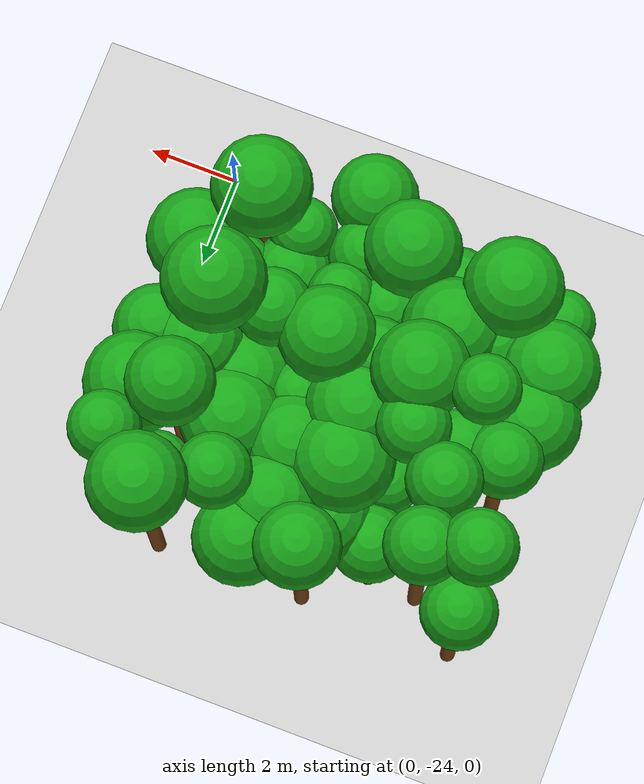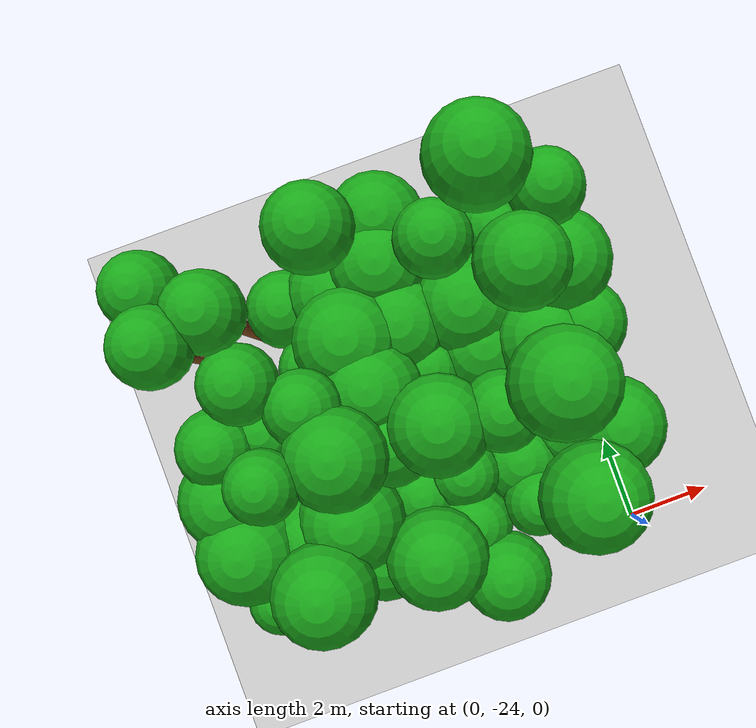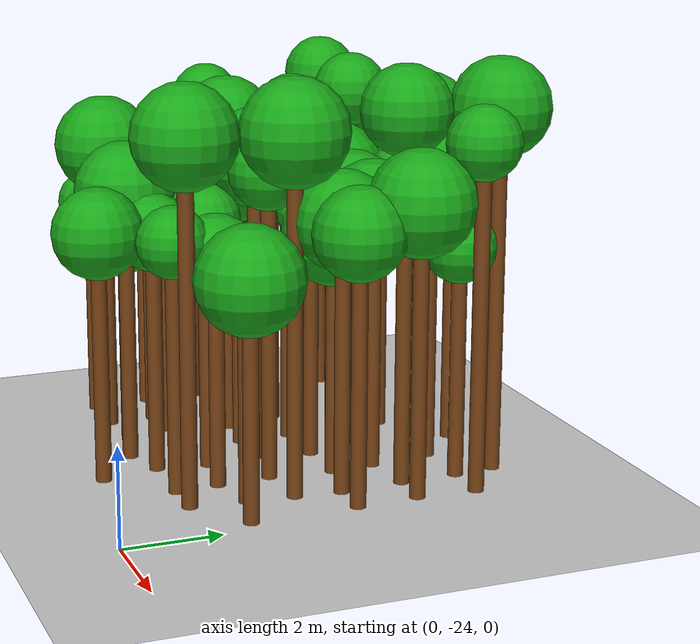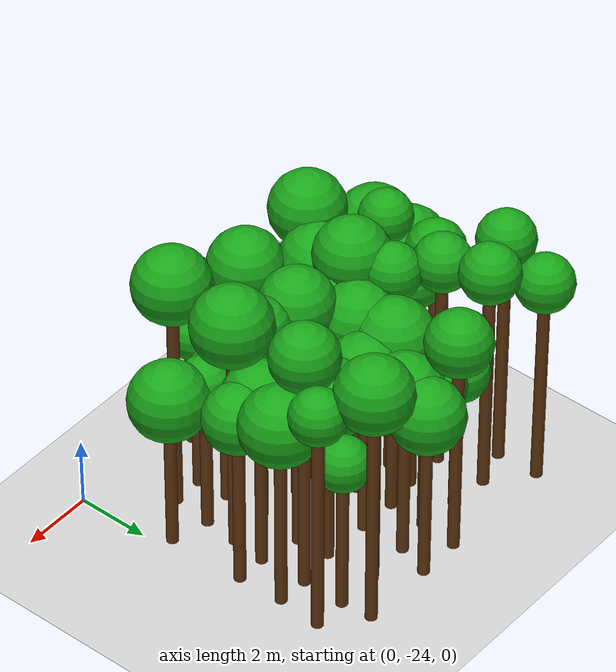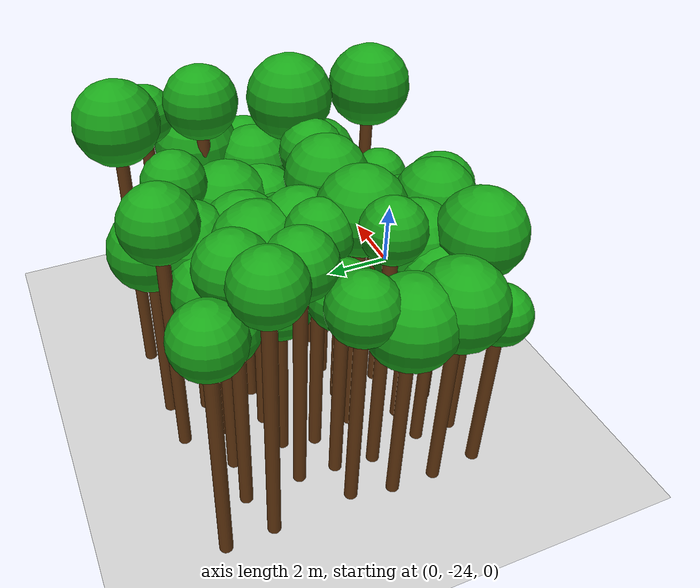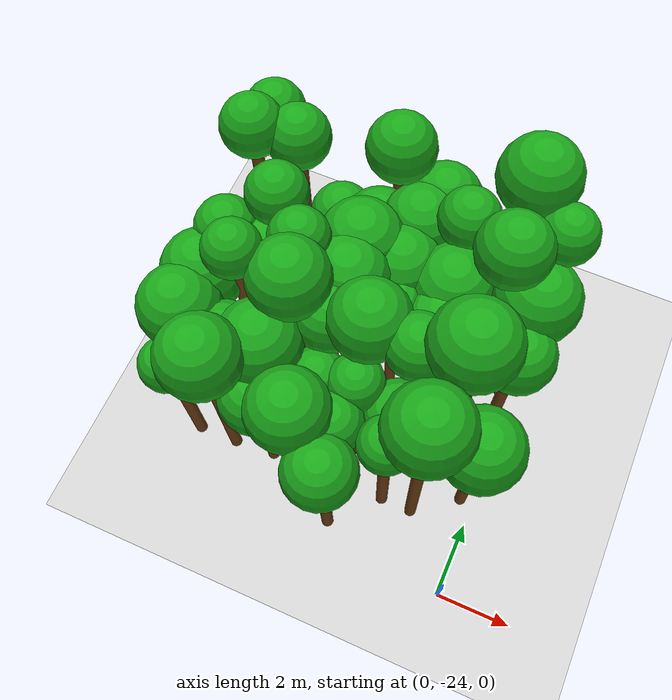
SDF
<sdf version="1.6">
 <world name="forest_world">
  <include><uri>model://sun</uri></include>
  <include><uri>model://ground_plane</uri></include>
  <model name="tree_1107_trunk">
   <static>true</static>
   <pose>-7.95 -22.31 2.15 0 0 0</pose>
   <link name="link">
    <collision name="collision">
     <geometry><cylinder><radius>0.16</radius><length>4.30</length></cylinder></geometry>
    </collision>
    <visual name="visual">
     <geometry><cylinder><radius>0.16</radius><length>4.30</length></cylinder></geometry>
     <material><ambient>0.35 0.20 0.05 1</ambient><diffuse>0.45 0.25 0.08 1</diffuse></material>
    </visual>
   </link>
  </model>
  <model name="tree_1107_leaf">
   <static>true</static>
   <pose>-7.95 -22.31 4.72 0 0 0</pose>
   <link name="link">
    <collision name="collision"><geometry><sphere><radius>0.71</radius></sphere></geometry></collision>
    <visual name="visual">
     <geometry><sphere><radius>0.71</radius></sphere></geometry>
     <material><ambient>0.05 0.45 0.05 1</ambient><diffuse>0.10 0.65 0.10 1</diffuse></material>
    </visual>
   </link>
  </model>
  <model name="tree_1108_trunk">
   <static>true</static>
   <pose>-8.07 -21.11 2.44 0 0 0</pose>
   <link name="link">
    <collision name="collision">
     <geometry><cylinder><radius>0.16</radius><length>4.88</length></cylinder></geometry>
    </collision>
    <visual name="visual">
     <geometry><cylinder><radius>0.16</radius><length>4.88</length></cylinder></geometry>
     <material><ambient>0.35 0.20 0.05 1</ambient><diffuse>0.45 0.25 0.08 1</diffuse></material>
    </visual>
   </link>
  </model>
  <model name="tree_1108_leaf">
   <static>true</static>
   <pose>-8.07 -21.11 5.51 0 0 0</pose>
   <link name="link">
    <collision name="collision"><geometry><sphere><radius>1.04</radius></sphere></geometry></collision>
    <visual name="visual">
     <geometry><sphere><radius>1.04</radius></sphere></geometry>
     <material><ambient>0.05 0.45 0.05 1</ambient><diffuse>0.10 0.65 0.10 1</diffuse></material>
    </visual>
   </link>
  </model>
  <model name="tree_1109_trunk">
   <static>true</static>
   <pose>-8.06 -20.00 2.39 0 0 0</pose>
   <link name="link">
    <collision name="collision">
     <geometry><cylinder><radius>0.16</radius><length>4.77</length></cylinder></geometry>
    </collision>
    <visual name="visual">
     <geometry><cylinder><radius>0.16</radius><length>4.77</length></cylinder></geometry>
     <material><ambient>0.35 0.20 0.05 1</ambient><diffuse>0.45 0.25 0.08 1</diffuse></material>
    </visual>
   </link>
  </model>
  <model name="tree_1109_leaf">
   <static>true</static>
   <pose>-8.06 -20.00 5.40 0 0 0</pose>
   <link name="link">
    <collision name="collision"><geometry><sphere><radius>1.05</radius></sphere></geometry></collision>
    <visual name="visual">
     <geometry><sphere><radius>1.05</radius></sphere></geometry>
     <material><ambient>0.05 0.45 0.05 1</ambient><diffuse>0.10 0.65 0.10 1</diffuse></material>
    </visual>
   </link>
  </model>
  <model name="tree_1110_trunk">
   <static>true</static>
   <pose>-7.86 -18.98 2.73 0 0 0</pose>
   <link name="link">
    <collision name="collision">
     <geometry><cylinder><radius>0.16</radius><length>5.46</length></cylinder></geometry>
    </collision>
    <visual name="visual">
     <geometry><cylinder><radius>0.16</radius><length>5.46</length></cylinder></geometry>
     <material><ambient>0.35 0.20 0.05 1</ambient><diffuse>0.45 0.25 0.08 1</diffuse></material>
    </visual>
   </link>
  </model>
  <model name="tree_1110_leaf">
   <static>true</static>
   <pose>-7.86 -18.98 5.94 0 0 0</pose>
   <link name="link">
    <collision name="collision"><geometry><sphere><radius>0.80</radius></sphere></geometry></collision>
    <visual name="visual">
     <geometry><sphere><radius>0.80</radius></sphere></geometry>
     <material><ambient>0.05 0.45 0.05 1</ambient><diffuse>0.10 0.65 0.10 1</diffuse></material>
    </visual>
   </link>
  </model>
  <model name="tree_1112_trunk">
   <static>true</static>
   <pose>-8.03 -16.94 3.40 0 0 0</pose>
   <link name="link">
    <collision name="collision">
     <geometry><cylinder><radius>0.16</radius><length>6.80</length></cylinder></geometry>
    </collision>
    <visual name="visual">
     <geometry><cylinder><radius>0.16</radius><length>6.80</length></cylinder></geometry>
     <material><ambient>0.35 0.20 0.05 1</ambient><diffuse>0.45 0.25 0.08 1</diffuse></material>
    </visual>
   </link>
  </model>
  <model name="tree_1112_leaf">
   <static>true</static>
   <pose>-8.03 -16.94 7.27 0 0 0</pose>
   <link name="link">
    <collision name="collision"><geometry><sphere><radius>0.78</radius></sphere></geometry></collision>
    <visual name="visual">
     <geometry><sphere><radius>0.78</radius></sphere></geometry>
     <material><ambient>0.05 0.45 0.05 1</ambient><diffuse>0.10 0.65 0.10 1</diffuse></material>
    </visual>
   </link>
  </model>
  <model name="tree_1113_trunk">
   <static>true</static>
   <pose>-8.08 -15.75 3.00 0 0 0</pose>
   <link name="link">
    <collision name="collision">
     <geometry><cylinder><radius>0.16</radius><length>5.99</length></cylinder></geometry>
    </collision>
    <visual name="visual">
     <geometry><cylinder><radius>0.16</radius><length>5.99</length></cylinder></geometry>
     <material><ambient>0.35 0.20 0.05 1</ambient><diffuse>0.45 0.25 0.08 1</diffuse></material>
    </visual>
   </link>
  </model>
  <model name="tree_1113_leaf">
   <static>true</static>
   <pose>-8.08 -15.75 6.46 0 0 0</pose>
   <link name="link">
    <collision name="collision"><geometry><sphere><radius>0.78</radius></sphere></geometry></collision>
    <visual name="visual">
     <geometry><sphere><radius>0.78</radius></sphere></geometry>
     <material><ambient>0.05 0.45 0.05 1</ambient><diffuse>0.10 0.65 0.10 1</diffuse></material>
    </visual>
   </link>
  </model>
  <model name="tree_1162_trunk">
   <static>true</static>
   <pose>-6.84 -22.29 2.78 0 0 0</pose>
   <link name="link">
    <collision name="collision">
     <geometry><cylinder><radius>0.16</radius><length>5.56</length></cylinder></geometry>
    </collision>
    <visual name="visual">
     <geometry><cylinder><radius>0.16</radius><length>5.56</length></cylinder></geometry>
     <material><ambient>0.35 0.20 0.05 1</ambient><diffuse>0.45 0.25 0.08 1</diffuse></material>
    </visual>
   </link>
  </model>
  <model name="tree_1162_leaf">
   <static>true</static>
   <pose>-6.84 -22.29 6.17 0 0 0</pose>
   <link name="link">
    <collision name="collision"><geometry><sphere><radius>1.03</radius></sphere></geometry></collision>
    <visual name="visual">
     <geometry><sphere><radius>1.03</radius></sphere></geometry>
     <material><ambient>0.05 0.45 0.05 1</ambient><diffuse>0.10 0.65 0.10 1</diffuse></material>
    </visual>
   </link>
  </model>
  <model name="tree_1163_trunk">
   <static>true</static>
   <pose>-6.84 -21.33 2.31 0 0 0</pose>
   <link name="link">
    <collision name="collision">
     <geometry><cylinder><radius>0.16</radius><length>4.62</length></cylinder></geometry>
    </collision>
    <visual name="visual">
     <geometry><cylinder><radius>0.16</radius><length>4.62</length></cylinder></geometry>
     <material><ambient>0.35 0.20 0.05 1</ambient><diffuse>0.45 0.25 0.08 1</diffuse></material>
    </visual>
   </link>
  </model>
  <model name="tree_1163_leaf">
   <static>true</static>
   <pose>-6.84 -21.33 5.18 0 0 0</pose>
   <link name="link">
    <collision name="collision"><geometry><sphere><radius>0.94</radius></sphere></geometry></collision>
    <visual name="visual">
     <geometry><sphere><radius>0.94</radius></sphere></geometry>
     <material><ambient>0.05 0.45 0.05 1</ambient><diffuse>0.10 0.65 0.10 1</diffuse></material>
    </visual>
   </link>
  </model>
  <model name="tree_1164_trunk">
   <static>true</static>
   <pose>-7.07 -19.96 3.30 0 0 0</pose>
   <link name="link">
    <collision name="collision">
     <geometry><cylinder><radius>0.16</radius><length>6.59</length></cylinder></geometry>
    </collision>
    <visual name="visual">
     <geometry><cylinder><radius>0.16</radius><length>6.59</length></cylinder></geometry>
     <material><ambient>0.35 0.20 0.05 1</ambient><diffuse>0.45 0.25 0.08 1</diffuse></material>
    </visual>
   </link>
  </model>
  <model name="tree_1164_leaf">
   <static>true</static>
   <pose>-7.07 -19.96 7.02 0 0 0</pose>
   <link name="link">
    <collision name="collision"><geometry><sphere><radius>0.71</radius></sphere></geometry></collision>
    <visual name="visual">
     <geometry><sphere><radius>0.71</radius></sphere></geometry>
     <material><ambient>0.05 0.45 0.05 1</ambient><diffuse>0.10 0.65 0.10 1</diffuse></material>
    </visual>
   </link>
  </model>
  <model name="tree_1165_trunk">
   <static>true</static>
   <pose>-6.96 -18.98 2.55 0 0 0</pose>
   <link name="link">
    <collision name="collision">
     <geometry><cylinder><radius>0.16</radius><length>5.10</length></cylinder></geometry>
    </collision>
    <visual name="visual">
     <geometry><cylinder><radius>0.16</radius><length>5.10</length></cylinder></geometry>
     <material><ambient>0.35 0.20 0.05 1</ambient><diffuse>0.45 0.25 0.08 1</diffuse></material>
    </visual>
   </link>
  </model>
  <model name="tree_1165_leaf">
   <static>true</static>
   <pose>-6.96 -18.98 5.58 0 0 0</pose>
   <link name="link">
    <collision name="collision"><geometry><sphere><radius>0.80</radius></sphere></geometry></collision>
    <visual name="visual">
     <geometry><sphere><radius>0.80</radius></sphere></geometry>
     <material><ambient>0.05 0.45 0.05 1</ambient><diffuse>0.10 0.65 0.10 1</diffuse></material>
    </visual>
   </link>
  </model>
  <model name="tree_1166_trunk">
   <static>true</static>
   <pose>-6.92 -18.04 3.09 0 0 0</pose>
   <link name="link">
    <collision name="collision">
     <geometry><cylinder><radius>0.16</radius><length>6.18</length></cylinder></geometry>
    </collision>
    <visual name="visual">
     <geometry><cylinder><radius>0.16</radius><length>6.18</length></cylinder></geometry>
     <material><ambient>0.35 0.20 0.05 1</ambient><diffuse>0.45 0.25 0.08 1</diffuse></material>
    </visual>
   </link>
  </model>
  <model name="tree_1166_leaf">
   <static>true</static>
   <pose>-6.92 -18.04 6.65 0 0 0</pose>
   <link name="link">
    <collision name="collision"><geometry><sphere><radius>0.78</radius></sphere></geometry></collision>
    <visual name="visual">
     <geometry><sphere><radius>0.78</radius></sphere></geometry>
     <material><ambient>0.05 0.45 0.05 1</ambient><diffuse>0.10 0.65 0.10 1</diffuse></material>
    </visual>
   </link>
  </model>
  <model name="tree_1167_trunk">
   <static>true</static>
   <pose>-7.00 -16.63 3.26 0 0 0</pose>
   <link name="link">
    <collision name="collision">
     <geometry><cylinder><radius>0.16</radius><length>6.53</length></cylinder></geometry>
    </collision>
    <visual name="visual">
     <geometry><cylinder><radius>0.16</radius><length>6.53</length></cylinder></geometry>
     <material><ambient>0.35 0.20 0.05 1</ambient><diffuse>0.45 0.25 0.08 1</diffuse></material>
    </visual>
   </link>
  </model>
  <model name="tree_1167_leaf">
   <static>true</static>
   <pose>-7.00 -16.63 7.01 0 0 0</pose>
   <link name="link">
    <collision name="collision"><geometry><sphere><radius>0.80</radius></sphere></geometry></collision>
    <visual name="visual">
     <geometry><sphere><radius>0.80</radius></sphere></geometry>
     <material><ambient>0.05 0.45 0.05 1</ambient><diffuse>0.10 0.65 0.10 1</diffuse></material>
    </visual>
   </link>
  </model>
  <model name="tree_1217_trunk">
   <static>true</static>
   <pose>-5.69 -22.20 2.02 0 0 0</pose>
   <link name="link">
    <collision name="collision">
     <geometry><cylinder><radius>0.16</radius><length>4.05</length></cylinder></geometry>
    </collision>
    <visual name="visual">
     <geometry><cylinder><radius>0.16</radius><length>4.05</length></cylinder></geometry>
     <material><ambient>0.35 0.20 0.05 1</ambient><diffuse>0.45 0.25 0.08 1</diffuse></material>
    </visual>
   </link>
  </model>
  <model name="tree_1217_leaf">
   <static>true</static>
   <pose>-5.69 -22.20 4.61 0 0 0</pose>
   <link name="link">
    <collision name="collision"><geometry><sphere><radius>0.93</radius></sphere></geometry></collision>
    <visual name="visual">
     <geometry><sphere><radius>0.93</radius></sphere></geometry>
     <material><ambient>0.05 0.45 0.05 1</ambient><diffuse>0.10 0.65 0.10 1</diffuse></material>
    </visual>
   </link>
  </model>
  <model name="tree_1218_trunk">
   <static>true</static>
   <pose>-5.97 -21.21 2.46 0 0 0</pose>
   <link name="link">
    <collision name="collision">
     <geometry><cylinder><radius>0.16</radius><length>4.91</length></cylinder></geometry>
    </collision>
    <visual name="visual">
     <geometry><cylinder><radius>0.16</radius><length>4.91</length></cylinder></geometry>
     <material><ambient>0.35 0.20 0.05 1</ambient><diffuse>0.45 0.25 0.08 1</diffuse></material>
    </visual>
   </link>
  </model>
  <model name="tree_1218_leaf">
   <static>true</static>
   <pose>-5.97 -21.21 5.55 0 0 0</pose>
   <link name="link">
    <collision name="collision"><geometry><sphere><radius>1.06</radius></sphere></geometry></collision>
    <visual name="visual">
     <geometry><sphere><radius>1.06</radius></sphere></geometry>
     <material><ambient>0.05 0.45 0.05 1</ambient><diffuse>0.10 0.65 0.10 1</diffuse></material>
    </visual>
   </link>
  </model>
  <model name="tree_1219_trunk">
   <static>true</static>
   <pose>-5.72 -19.95 3.02 0 0 0</pose>
   <link name="link">
    <collision name="collision">
     <geometry><cylinder><radius>0.16</radius><length>6.05</length></cylinder></geometry>
    </collision>
    <visual name="visual">
     <geometry><cylinder><radius>0.16</radius><length>6.05</length></cylinder></geometry>
     <material><ambient>0.35 0.20 0.05 1</ambient><diffuse>0.45 0.25 0.08 1</diffuse></material>
    </visual>
   </link>
  </model>
  <model name="tree_1219_leaf">
   <static>true</static>
   <pose>-5.72 -19.95 6.65 0 0 0</pose>
   <link name="link">
    <collision name="collision"><geometry><sphere><radius>1.01</radius></sphere></geometry></collision>
    <visual name="visual">
     <geometry><sphere><radius>1.01</radius></sphere></geometry>
     <material><ambient>0.05 0.45 0.05 1</ambient><diffuse>0.10 0.65 0.10 1</diffuse></material>
    </visual>
   </link>
  </model>
  <model name="tree_1220_trunk">
   <static>true</static>
   <pose>-5.98 -18.86 3.04 0 0 0</pose>
   <link name="link">
    <collision name="collision">
     <geometry><cylinder><radius>0.16</radius><length>6.08</length></cylinder></geometry>
    </collision>
    <visual name="visual">
     <geometry><cylinder><radius>0.16</radius><length>6.08</length></cylinder></geometry>
     <material><ambient>0.35 0.20 0.05 1</ambient><diffuse>0.45 0.25 0.08 1</diffuse></material>
    </visual>
   </link>
  </model>
  <model name="tree_1220_leaf">
   <static>true</static>
   <pose>-5.98 -18.86 6.53 0 0 0</pose>
   <link name="link">
    <collision name="collision"><geometry><sphere><radius>0.76</radius></sphere></geometry></collision>
    <visual name="visual">
     <geometry><sphere><radius>0.76</radius></sphere></geometry>
     <material><ambient>0.05 0.45 0.05 1</ambient><diffuse>0.10 0.65 0.10 1</diffuse></material>
    </visual>
   </link>
  </model>
  <model name="tree_1221_trunk">
   <static>true</static>
   <pose>-5.79 -18.04 2.06 0 0 0</pose>
   <link name="link">
    <collision name="collision">
     <geometry><cylinder><radius>0.16</radius><length>4.12</length></cylinder></geometry>
    </collision>
    <visual name="visual">
     <geometry><cylinder><radius>0.16</radius><length>4.12</length></cylinder></geometry>
     <material><ambient>0.35 0.20 0.05 1</ambient><diffuse>0.45 0.25 0.08 1</diffuse></material>
    </visual>
   </link>
  </model>
  <model name="tree_1221_leaf">
   <static>true</static>
   <pose>-5.79 -18.04 4.55 0 0 0</pose>
   <link name="link">
    <collision name="collision"><geometry><sphere><radius>0.71</radius></sphere></geometry></collision>
    <visual name="visual">
     <geometry><sphere><radius>0.71</radius></sphere></geometry>
     <material><ambient>0.05 0.45 0.05 1</ambient><diffuse>0.10 0.65 0.10 1</diffuse></material>
    </visual>
   </link>
  </model>
  <model name="tree_1222_trunk">
   <static>true</static>
   <pose>-5.90 -16.70 2.01 0 0 0</pose>
   <link name="link">
    <collision name="collision">
     <geometry><cylinder><radius>0.16</radius><length>4.02</length></cylinder></geometry>
    </collision>
    <visual name="visual">
     <geometry><cylinder><radius>0.16</radius><length>4.02</length></cylinder></geometry>
     <material><ambient>0.35 0.20 0.05 1</ambient><diffuse>0.45 0.25 0.08 1</diffuse></material>
    </visual>
   </link>
  </model>
  <model name="tree_1222_leaf">
   <static>true</static>
   <pose>-5.90 -16.70 4.52 0 0 0</pose>
   <link name="link">
    <collision name="collision"><geometry><sphere><radius>0.83</radius></sphere></geometry></collision>
    <visual name="visual">
     <geometry><sphere><radius>0.83</radius></sphere></geometry>
     <material><ambient>0.05 0.45 0.05 1</ambient><diffuse>0.10 0.65 0.10 1</diffuse></material>
    </visual>
   </link>
  </model>
  <model name="tree_1272_trunk">
   <static>true</static>
   <pose>-4.64 -22.47 2.51 0 0 0</pose>
   <link name="link">
    <collision name="collision">
     <geometry><cylinder><radius>0.16</radius><length>5.01</length></cylinder></geometry>
    </collision>
    <visual name="visual">
     <geometry><cylinder><radius>0.16</radius><length>5.01</length></cylinder></geometry>
     <material><ambient>0.35 0.20 0.05 1</ambient><diffuse>0.45 0.25 0.08 1</diffuse></material>
    </visual>
   </link>
  </model>
  <model name="tree_1272_leaf">
   <static>true</static>
   <pose>-4.64 -22.47 5.62 0 0 0</pose>
   <link name="link">
    <collision name="collision"><geometry><sphere><radius>1.02</radius></sphere></geometry></collision>
    <visual name="visual">
     <geometry><sphere><radius>1.02</radius></sphere></geometry>
     <material><ambient>0.05 0.45 0.05 1</ambient><diffuse>0.10 0.65 0.10 1</diffuse></material>
    </visual>
   </link>
  </model>
  <model name="tree_1273_trunk">
   <static>true</static>
   <pose>-4.53 -21.27 2.22 0 0 0</pose>
   <link name="link">
    <collision name="collision">
     <geometry><cylinder><radius>0.16</radius><length>4.45</length></cylinder></geometry>
    </collision>
    <visual name="visual">
     <geometry><cylinder><radius>0.16</radius><length>4.45</length></cylinder></geometry>
     <material><ambient>0.35 0.20 0.05 1</ambient><diffuse>0.45 0.25 0.08 1</diffuse></material>
    </visual>
   </link>
  </model>
  <model name="tree_1273_leaf">
   <static>true</static>
   <pose>-4.53 -21.27 4.90 0 0 0</pose>
   <link name="link">
    <collision name="collision"><geometry><sphere><radius>0.75</radius></sphere></geometry></collision>
    <visual name="visual">
     <geometry><sphere><radius>0.75</radius></sphere></geometry>
     <material><ambient>0.05 0.45 0.05 1</ambient><diffuse>0.10 0.65 0.10 1</diffuse></material>
    </visual>
   </link>
  </model>
  <model name="tree_1274_trunk">
   <static>true</static>
   <pose>-4.73 -20.03 2.57 0 0 0</pose>
   <link name="link">
    <collision name="collision">
     <geometry><cylinder><radius>0.16</radius><length>5.15</length></cylinder></geometry>
    </collision>
    <visual name="visual">
     <geometry><cylinder><radius>0.16</radius><length>5.15</length></cylinder></geometry>
     <material><ambient>0.35 0.20 0.05 1</ambient><diffuse>0.45 0.25 0.08 1</diffuse></material>
    </visual>
   </link>
  </model>
  <model name="tree_1274_leaf">
   <static>true</static>
   <pose>-4.73 -20.03 5.69 0 0 0</pose>
   <link name="link">
    <collision name="collision"><geometry><sphere><radius>0.89</radius></sphere></geometry></collision>
    <visual name="visual">
     <geometry><sphere><radius>0.89</radius></sphere></geometry>
     <material><ambient>0.05 0.45 0.05 1</ambient><diffuse>0.10 0.65 0.10 1</diffuse></material>
    </visual>
   </link>
  </model>
  <model name="tree_1275_trunk">
   <static>true</static>
   <pose>-4.74 -18.95 2.54 0 0 0</pose>
   <link name="link">
    <collision name="collision">
     <geometry><cylinder><radius>0.16</radius><length>5.08</length></cylinder></geometry>
    </collision>
    <visual name="visual">
     <geometry><cylinder><radius>0.16</radius><length>5.08</length></cylinder></geometry>
     <material><ambient>0.35 0.20 0.05 1</ambient><diffuse>0.45 0.25 0.08 1</diffuse></material>
    </visual>
   </link>
  </model>
  <model name="tree_1275_leaf">
   <static>true</static>
   <pose>-4.74 -18.95 5.72 0 0 0</pose>
   <link name="link">
    <collision name="collision"><geometry><sphere><radius>1.05</radius></sphere></geometry></collision>
    <visual name="visual">
     <geometry><sphere><radius>1.05</radius></sphere></geometry>
     <material><ambient>0.05 0.45 0.05 1</ambient><diffuse>0.10 0.65 0.10 1</diffuse></material>
    </visual>
   </link>
  </model>
  <model name="tree_1276_trunk">
   <static>true</static>
   <pose>-4.84 -17.89 2.50 0 0 0</pose>
   <link name="link">
    <collision name="collision">
     <geometry><cylinder><radius>0.16</radius><length>4.99</length></cylinder></geometry>
    </collision>
    <visual name="visual">
     <geometry><cylinder><radius>0.16</radius><length>4.99</length></cylinder></geometry>
     <material><ambient>0.35 0.20 0.05 1</ambient><diffuse>0.45 0.25 0.08 1</diffuse></material>
    </visual>
   </link>
  </model>
  <model name="tree_1276_leaf">
   <static>true</static>
   <pose>-4.84 -17.89 5.64 0 0 0</pose>
   <link name="link">
    <collision name="collision"><geometry><sphere><radius>1.09</radius></sphere></geometry></collision>
    <visual name="visual">
     <geometry><sphere><radius>1.09</radius></sphere></geometry>
     <material><ambient>0.05 0.45 0.05 1</ambient><diffuse>0.10 0.65 0.10 1</diffuse></material>
    </visual>
   </link>
  </model>
  <model name="tree_1277_trunk">
   <static>true</static>
   <pose>-4.80 -16.83 2.07 0 0 0</pose>
   <link name="link">
    <collision name="collision">
     <geometry><cylinder><radius>0.16</radius><length>4.15</length></cylinder></geometry>
    </collision>
    <visual name="visual">
     <geometry><cylinder><radius>0.16</radius><length>4.15</length></cylinder></geometry>
     <material><ambient>0.35 0.20 0.05 1</ambient><diffuse>0.45 0.25 0.08 1</diffuse></material>
    </visual>
   </link>
  </model>
  <model name="tree_1277_leaf">
   <static>true</static>
   <pose>-4.80 -16.83 4.76 0 0 0</pose>
   <link name="link">
    <collision name="collision"><geometry><sphere><radius>1.03</radius></sphere></geometry></collision>
    <visual name="visual">
     <geometry><sphere><radius>1.03</radius></sphere></geometry>
     <material><ambient>0.05 0.45 0.05 1</ambient><diffuse>0.10 0.65 0.10 1</diffuse></material>
    </visual>
   </link>
  </model>
  <model name="tree_1278_trunk">
   <static>true</static>
   <pose>-4.71 -15.79 3.12 0 0 0</pose>
   <link name="link">
    <collision name="collision">
     <geometry><cylinder><radius>0.16</radius><length>6.25</length></cylinder></geometry>
    </collision>
    <visual name="visual">
     <geometry><cylinder><radius>0.16</radius><length>6.25</length></cylinder></geometry>
     <material><ambient>0.35 0.20 0.05 1</ambient><diffuse>0.45 0.25 0.08 1</diffuse></material>
    </visual>
   </link>
  </model>
  <model name="tree_1278_leaf">
   <static>true</static>
   <pose>-4.71 -15.79 6.78 0 0 0</pose>
   <link name="link">
    <collision name="collision"><geometry><sphere><radius>0.88</radius></sphere></geometry></collision>
    <visual name="visual">
     <geometry><sphere><radius>0.88</radius></sphere></geometry>
     <material><ambient>0.05 0.45 0.05 1</ambient><diffuse>0.10 0.65 0.10 1</diffuse></material>
    </visual>
   </link>
  </model>
  <model name="tree_1326_trunk">
   <static>true</static>
   <pose>-3.50 -23.35 2.27 0 0 0</pose>
   <link name="link">
    <collision name="collision">
     <geometry><cylinder><radius>0.16</radius><length>4.53</length></cylinder></geometry>
    </collision>
    <visual name="visual">
     <geometry><cylinder><radius>0.16</radius><length>4.53</length></cylinder></geometry>
     <material><ambient>0.35 0.20 0.05 1</ambient><diffuse>0.45 0.25 0.08 1</diffuse></material>
    </visual>
   </link>
  </model>
  <model name="tree_1326_leaf">
   <static>true</static>
   <pose>-3.50 -23.35 5.08 0 0 0</pose>
   <link name="link">
    <collision name="collision"><geometry><sphere><radius>0.91</radius></sphere></geometry></collision>
    <visual name="visual">
     <geometry><sphere><radius>0.91</radius></sphere></geometry>
     <material><ambient>0.05 0.45 0.05 1</ambient><diffuse>0.10 0.65 0.10 1</diffuse></material>
    </visual>
   </link>
  </model>
  <model name="tree_1327_trunk">
   <static>true</static>
   <pose>-3.74 -22.17 2.25 0 0 0</pose>
   <link name="link">
    <collision name="collision">
     <geometry><cylinder><radius>0.16</radius><length>4.49</length></cylinder></geometry>
    </collision>
    <visual name="visual">
     <geometry><cylinder><radius>0.16</radius><length>4.49</length></cylinder></geometry>
     <material><ambient>0.35 0.20 0.05 1</ambient><diffuse>0.45 0.25 0.08 1</diffuse></material>
    </visual>
   </link>
  </model>
  <model name="tree_1327_leaf">
   <static>true</static>
   <pose>-3.74 -22.17 4.96 0 0 0</pose>
   <link name="link">
    <collision name="collision"><geometry><sphere><radius>0.78</radius></sphere></geometry></collision>
    <visual name="visual">
     <geometry><sphere><radius>0.78</radius></sphere></geometry>
     <material><ambient>0.05 0.45 0.05 1</ambient><diffuse>0.10 0.65 0.10 1</diffuse></material>
    </visual>
   </link>
  </model>
  <model name="tree_1328_trunk">
   <static>true</static>
   <pose>-3.59 -21.13 2.38 0 0 0</pose>
   <link name="link">
    <collision name="collision">
     <geometry><cylinder><radius>0.16</radius><length>4.75</length></cylinder></geometry>
    </collision>
    <visual name="visual">
     <geometry><cylinder><radius>0.16</radius><length>4.75</length></cylinder></geometry>
     <material><ambient>0.35 0.20 0.05 1</ambient><diffuse>0.45 0.25 0.08 1</diffuse></material>
    </visual>
   </link>
  </model>
  <model name="tree_1328_leaf">
   <static>true</static>
   <pose>-3.59 -21.13 5.18 0 0 0</pose>
   <link name="link">
    <collision name="collision"><geometry><sphere><radius>0.71</radius></sphere></geometry></collision>
    <visual name="visual">
     <geometry><sphere><radius>0.71</radius></sphere></geometry>
     <material><ambient>0.05 0.45 0.05 1</ambient><diffuse>0.10 0.65 0.10 1</diffuse></material>
    </visual>
   </link>
  </model>
  <model name="tree_1329_trunk">
   <static>true</static>
   <pose>-3.71 -20.04 2.86 0 0 0</pose>
   <link name="link">
    <collision name="collision">
     <geometry><cylinder><radius>0.16</radius><length>5.72</length></cylinder></geometry>
    </collision>
    <visual name="visual">
     <geometry><cylinder><radius>0.16</radius><length>5.72</length></cylinder></geometry>
     <material><ambient>0.35 0.20 0.05 1</ambient><diffuse>0.45 0.25 0.08 1</diffuse></material>
    </visual>
   </link>
  </model>
  <model name="tree_1329_leaf">
   <static>true</static>
   <pose>-3.71 -20.04 6.32 0 0 0</pose>
   <link name="link">
    <collision name="collision"><geometry><sphere><radius>1.00</radius></sphere></geometry></collision>
    <visual name="visual">
     <geometry><sphere><radius>1.00</radius></sphere></geometry>
     <material><ambient>0.05 0.45 0.05 1</ambient><diffuse>0.10 0.65 0.10 1</diffuse></material>
    </visual>
   </link>
  </model>
  <model name="tree_1330_trunk">
   <static>true</static>
   <pose>-3.52 -18.91 2.38 0 0 0</pose>
   <link name="link">
    <collision name="collision">
     <geometry><cylinder><radius>0.16</radius><length>4.77</length></cylinder></geometry>
    </collision>
    <visual name="visual">
     <geometry><cylinder><radius>0.16</radius><length>4.77</length></cylinder></geometry>
     <material><ambient>0.35 0.20 0.05 1</ambient><diffuse>0.45 0.25 0.08 1</diffuse></material>
    </visual>
   </link>
  </model>
  <model name="tree_1330_leaf">
   <static>true</static>
   <pose>-3.52 -18.91 5.20 0 0 0</pose>
   <link name="link">
    <collision name="collision"><geometry><sphere><radius>0.71</radius></sphere></geometry></collision>
    <visual name="visual">
     <geometry><sphere><radius>0.71</radius></sphere></geometry>
     <material><ambient>0.05 0.45 0.05 1</ambient><diffuse>0.10 0.65 0.10 1</diffuse></material>
    </visual>
   </link>
  </model>
  <model name="tree_1331_trunk">
   <static>true</static>
   <pose>-3.78 -17.93 2.33 0 0 0</pose>
   <link name="link">
    <collision name="collision">
     <geometry><cylinder><radius>0.16</radius><length>4.66</length></cylinder></geometry>
    </collision>
    <visual name="visual">
     <geometry><cylinder><radius>0.16</radius><length>4.66</length></cylinder></geometry>
     <material><ambient>0.35 0.20 0.05 1</ambient><diffuse>0.45 0.25 0.08 1</diffuse></material>
    </visual>
   </link>
  </model>
  <model name="tree_1331_leaf">
   <static>true</static>
   <pose>-3.78 -17.93 5.28 0 0 0</pose>
   <link name="link">
    <collision name="collision"><geometry><sphere><radius>1.04</radius></sphere></geometry></collision>
    <visual name="visual">
     <geometry><sphere><radius>1.04</radius></sphere></geometry>
     <material><ambient>0.05 0.45 0.05 1</ambient><diffuse>0.10 0.65 0.10 1</diffuse></material>
    </visual>
   </link>
  </model>
  <model name="tree_1332_trunk">
   <static>true</static>
   <pose>-3.77 -16.67 2.37 0 0 0</pose>
   <link name="link">
    <collision name="collision">
     <geometry><cylinder><radius>0.16</radius><length>4.73</length></cylinder></geometry>
    </collision>
    <visual name="visual">
     <geometry><cylinder><radius>0.16</radius><length>4.73</length></cylinder></geometry>
     <material><ambient>0.35 0.20 0.05 1</ambient><diffuse>0.45 0.25 0.08 1</diffuse></material>
    </visual>
   </link>
  </model>
  <model name="tree_1332_leaf">
   <static>true</static>
   <pose>-3.77 -16.67 5.35 0 0 0</pose>
   <link name="link">
    <collision name="collision"><geometry><sphere><radius>1.02</radius></sphere></geometry></collision>
    <visual name="visual">
     <geometry><sphere><radius>1.02</radius></sphere></geometry>
     <material><ambient>0.05 0.45 0.05 1</ambient><diffuse>0.10 0.65 0.10 1</diffuse></material>
    </visual>
   </link>
  </model>
  <model name="tree_1333_trunk">
   <static>true</static>
   <pose>-3.49 -15.77 2.34 0 0 0</pose>
   <link name="link">
    <collision name="collision">
     <geometry><cylinder><radius>0.16</radius><length>4.68</length></cylinder></geometry>
    </collision>
    <visual name="visual">
     <geometry><cylinder><radius>0.16</radius><length>4.68</length></cylinder></geometry>
     <material><ambient>0.35 0.20 0.05 1</ambient><diffuse>0.45 0.25 0.08 1</diffuse></material>
    </visual>
   </link>
  </model>
  <model name="tree_1333_leaf">
   <static>true</static>
   <pose>-3.49 -15.77 5.27 0 0 0</pose>
   <link name="link">
    <collision name="collision"><geometry><sphere><radius>0.99</radius></sphere></geometry></collision>
    <visual name="visual">
     <geometry><sphere><radius>0.99</radius></sphere></geometry>
     <material><ambient>0.05 0.45 0.05 1</ambient><diffuse>0.10 0.65 0.10 1</diffuse></material>
    </visual>
   </link>
  </model>
  <model name="tree_1382_trunk">
   <static>true</static>
   <pose>-2.38 -22.18 2.32 0 0 0</pose>
   <link name="link">
    <collision name="collision">
     <geometry><cylinder><radius>0.16</radius><length>4.64</length></cylinder></geometry>
    </collision>
    <visual name="visual">
     <geometry><cylinder><radius>0.16</radius><length>4.64</length></cylinder></geometry>
     <material><ambient>0.35 0.20 0.05 1</ambient><diffuse>0.45 0.25 0.08 1</diffuse></material>
    </visual>
   </link>
  </model>
  <model name="tree_1382_leaf">
   <static>true</static>
   <pose>-2.38 -22.18 5.06 0 0 0</pose>
   <link name="link">
    <collision name="collision"><geometry><sphere><radius>0.71</radius></sphere></geometry></collision>
    <visual name="visual">
     <geometry><sphere><radius>0.71</radius></sphere></geometry>
     <material><ambient>0.05 0.45 0.05 1</ambient><diffuse>0.10 0.65 0.10 1</diffuse></material>
    </visual>
   </link>
  </model>
  <model name="tree_1383_trunk">
   <static>true</static>
   <pose>-2.44 -21.30 2.05 0 0 0</pose>
   <link name="link">
    <collision name="collision">
     <geometry><cylinder><radius>0.16</radius><length>4.10</length></cylinder></geometry>
    </collision>
    <visual name="visual">
     <geometry><cylinder><radius>0.16</radius><length>4.10</length></cylinder></geometry>
     <material><ambient>0.35 0.20 0.05 1</ambient><diffuse>0.45 0.25 0.08 1</diffuse></material>
    </visual>
   </link>
  </model>
  <model name="tree_1383_leaf">
   <static>true</static>
   <pose>-2.44 -21.30 4.64 0 0 0</pose>
   <link name="link">
    <collision name="collision"><geometry><sphere><radius>0.89</radius></sphere></geometry></collision>
    <visual name="visual">
     <geometry><sphere><radius>0.89</radius></sphere></geometry>
     <material><ambient>0.05 0.45 0.05 1</ambient><diffuse>0.10 0.65 0.10 1</diffuse></material>
    </visual>
   </link>
  </model>
  <model name="tree_1384_trunk">
   <static>true</static>
   <pose>-2.50 -20.19 2.91 0 0 0</pose>
   <link name="link">
    <collision name="collision">
     <geometry><cylinder><radius>0.16</radius><length>5.82</length></cylinder></geometry>
    </collision>
    <visual name="visual">
     <geometry><cylinder><radius>0.16</radius><length>5.82</length></cylinder></geometry>
     <material><ambient>0.35 0.20 0.05 1</ambient><diffuse>0.45 0.25 0.08 1</diffuse></material>
    </visual>
   </link>
  </model>
  <model name="tree_1384_leaf">
   <static>true</static>
   <pose>-2.50 -20.19 6.30 0 0 0</pose>
   <link name="link">
    <collision name="collision"><geometry><sphere><radius>0.80</radius></sphere></geometry></collision>
    <visual name="visual">
     <geometry><sphere><radius>0.80</radius></sphere></geometry>
     <material><ambient>0.05 0.45 0.05 1</ambient><diffuse>0.10 0.65 0.10 1</diffuse></material>
    </visual>
   </link>
  </model>
  <model name="tree_1385_trunk">
   <static>true</static>
   <pose>-2.35 -18.88 2.17 0 0 0</pose>
   <link name="link">
    <collision name="collision">
     <geometry><cylinder><radius>0.16</radius><length>4.33</length></cylinder></geometry>
    </collision>
    <visual name="visual">
     <geometry><cylinder><radius>0.16</radius><length>4.33</length></cylinder></geometry>
     <material><ambient>0.35 0.20 0.05 1</ambient><diffuse>0.45 0.25 0.08 1</diffuse></material>
    </visual>
   </link>
  </model>
  <model name="tree_1385_leaf">
   <static>true</static>
   <pose>-2.35 -18.88 4.97 0 0 0</pose>
   <link name="link">
    <collision name="collision"><geometry><sphere><radius>1.05</radius></sphere></geometry></collision>
    <visual name="visual">
     <geometry><sphere><radius>1.05</radius></sphere></geometry>
     <material><ambient>0.05 0.45 0.05 1</ambient><diffuse>0.10 0.65 0.10 1</diffuse></material>
    </visual>
   </link>
  </model>
  <model name="tree_1386_trunk">
   <static>true</static>
   <pose>-2.43 -17.99 2.33 0 0 0</pose>
   <link name="link">
    <collision name="collision">
     <geometry><cylinder><radius>0.16</radius><length>4.66</length></cylinder></geometry>
    </collision>
    <visual name="visual">
     <geometry><cylinder><radius>0.16</radius><length>4.66</length></cylinder></geometry>
     <material><ambient>0.35 0.20 0.05 1</ambient><diffuse>0.45 0.25 0.08 1</diffuse></material>
    </visual>
   </link>
  </model>
  <model name="tree_1386_leaf">
   <static>true</static>
   <pose>-2.43 -17.99 5.30 0 0 0</pose>
   <link name="link">
    <collision name="collision"><geometry><sphere><radius>1.07</radius></sphere></geometry></collision>
    <visual name="visual">
     <geometry><sphere><radius>1.07</radius></sphere></geometry>
     <material><ambient>0.05 0.45 0.05 1</ambient><diffuse>0.10 0.65 0.10 1</diffuse></material>
    </visual>
   </link>
  </model>
  <model name="tree_1387_trunk">
   <static>true</static>
   <pose>-2.60 -16.68 2.91 0 0 0</pose>
   <link name="link">
    <collision name="collision">
     <geometry><cylinder><radius>0.16</radius><length>5.83</length></cylinder></geometry>
    </collision>
    <visual name="visual">
     <geometry><cylinder><radius>0.16</radius><length>5.83</length></cylinder></geometry>
     <material><ambient>0.35 0.20 0.05 1</ambient><diffuse>0.45 0.25 0.08 1</diffuse></material>
    </visual>
   </link>
  </model>
  <model name="tree_1387_leaf">
   <static>true</static>
   <pose>-2.60 -16.68 6.29 0 0 0</pose>
   <link name="link">
    <collision name="collision"><geometry><sphere><radius>0.78</radius></sphere></geometry></collision>
    <visual name="visual">
     <geometry><sphere><radius>0.78</radius></sphere></geometry>
     <material><ambient>0.05 0.45 0.05 1</ambient><diffuse>0.10 0.65 0.10 1</diffuse></material>
    </visual>
   </link>
  </model>
  <model name="tree_1434_trunk">
   <static>true</static>
   <pose>-1.52 -22.18 3.31 0 0 0</pose>
   <link name="link">
    <collision name="collision">
     <geometry><cylinder><radius>0.16</radius><length>6.62</length></cylinder></geometry>
    </collision>
    <visual name="visual">
     <geometry><cylinder><radius>0.16</radius><length>6.62</length></cylinder></geometry>
     <material><ambient>0.35 0.20 0.05 1</ambient><diffuse>0.45 0.25 0.08 1</diffuse></material>
    </visual>
   </link>
  </model>
  <model name="tree_1434_leaf">
   <static>true</static>
   <pose>-1.52 -22.18 7.24 0 0 0</pose>
   <link name="link">
    <collision name="collision"><geometry><sphere><radius>1.03</radius></sphere></geometry></collision>
    <visual name="visual">
     <geometry><sphere><radius>1.03</radius></sphere></geometry>
     <material><ambient>0.05 0.45 0.05 1</ambient><diffuse>0.10 0.65 0.10 1</diffuse></material>
    </visual>
   </link>
  </model>
  <model name="tree_1435_trunk">
   <static>true</static>
   <pose>-1.40 -21.06 2.15 0 0 0</pose>
   <link name="link">
    <collision name="collision">
     <geometry><cylinder><radius>0.16</radius><length>4.30</length></cylinder></geometry>
    </collision>
    <visual name="visual">
     <geometry><cylinder><radius>0.16</radius><length>4.30</length></cylinder></geometry>
     <material><ambient>0.35 0.20 0.05 1</ambient><diffuse>0.45 0.25 0.08 1</diffuse></material>
    </visual>
   </link>
  </model>
  <model name="tree_1435_leaf">
   <static>true</static>
   <pose>-1.40 -21.06 4.74 0 0 0</pose>
   <link name="link">
    <collision name="collision"><geometry><sphere><radius>0.73</radius></sphere></geometry></collision>
    <visual name="visual">
     <geometry><sphere><radius>0.73</radius></sphere></geometry>
     <material><ambient>0.05 0.45 0.05 1</ambient><diffuse>0.10 0.65 0.10 1</diffuse></material>
    </visual>
   </link>
  </model>
  <model name="tree_1436_trunk">
   <static>true</static>
   <pose>-1.32 -20.09 3.29 0 0 0</pose>
   <link name="link">
    <collision name="collision">
     <geometry><cylinder><radius>0.16</radius><length>6.58</length></cylinder></geometry>
    </collision>
    <visual name="visual">
     <geometry><cylinder><radius>0.16</radius><length>6.58</length></cylinder></geometry>
     <material><ambient>0.35 0.20 0.05 1</ambient><diffuse>0.45 0.25 0.08 1</diffuse></material>
    </visual>
   </link>
  </model>
  <model name="tree_1436_leaf">
   <static>true</static>
   <pose>-1.32 -20.09 7.22 0 0 0</pose>
   <link name="link">
    <collision name="collision"><geometry><sphere><radius>1.07</radius></sphere></geometry></collision>
    <visual name="visual">
     <geometry><sphere><radius>1.07</radius></sphere></geometry>
     <material><ambient>0.05 0.45 0.05 1</ambient><diffuse>0.10 0.65 0.10 1</diffuse></material>
    </visual>
   </link>
  </model>
  <model name="tree_1437_trunk">
   <static>true</static>
   <pose>-1.23 -19.14 2.45 0 0 0</pose>
   <link name="link">
    <collision name="collision">
     <geometry><cylinder><radius>0.16</radius><length>4.90</length></cylinder></geometry>
    </collision>
    <visual name="visual">
     <geometry><cylinder><radius>0.16</radius><length>4.90</length></cylinder></geometry>
     <material><ambient>0.35 0.20 0.05 1</ambient><diffuse>0.45 0.25 0.08 1</diffuse></material>
    </visual>
   </link>
  </model>
  <model name="tree_1437_leaf">
   <static>true</static>
   <pose>-1.23 -19.14 5.49 0 0 0</pose>
   <link name="link">
    <collision name="collision"><geometry><sphere><radius>0.99</radius></sphere></geometry></collision>
    <visual name="visual">
     <geometry><sphere><radius>0.99</radius></sphere></geometry>
     <material><ambient>0.05 0.45 0.05 1</ambient><diffuse>0.10 0.65 0.10 1</diffuse></material>
    </visual>
   </link>
  </model>
  <model name="tree_1438_trunk">
   <static>true</static>
   <pose>-1.31 -17.82 3.48 0 0 0</pose>
   <link name="link">
    <collision name="collision">
     <geometry><cylinder><radius>0.16</radius><length>6.97</length></cylinder></geometry>
    </collision>
    <visual name="visual">
     <geometry><cylinder><radius>0.16</radius><length>6.97</length></cylinder></geometry>
     <material><ambient>0.35 0.20 0.05 1</ambient><diffuse>0.45 0.25 0.08 1</diffuse></material>
    </visual>
   </link>
  </model>
  <model name="tree_1438_leaf">
   <static>true</static>
   <pose>-1.31 -17.82 7.51 0 0 0</pose>
   <link name="link">
    <collision name="collision"><geometry><sphere><radius>0.90</radius></sphere></geometry></collision>
    <visual name="visual">
     <geometry><sphere><radius>0.90</radius></sphere></geometry>
     <material><ambient>0.05 0.45 0.05 1</ambient><diffuse>0.10 0.65 0.10 1</diffuse></material>
    </visual>
   </link>
  </model>
  <model name="tree_1439_trunk">
   <static>true</static>
   <pose>-1.32 -16.63 2.15 0 0 0</pose>
   <link name="link">
    <collision name="collision">
     <geometry><cylinder><radius>0.16</radius><length>4.30</length></cylinder></geometry>
    </collision>
    <visual name="visual">
     <geometry><cylinder><radius>0.16</radius><length>4.30</length></cylinder></geometry>
     <material><ambient>0.35 0.20 0.05 1</ambient><diffuse>0.45 0.25 0.08 1</diffuse></material>
    </visual>
   </link>
  </model>
  <model name="tree_1439_leaf">
   <static>true</static>
   <pose>-1.32 -16.63 4.74 0 0 0</pose>
   <link name="link">
    <collision name="collision"><geometry><sphere><radius>0.73</radius></sphere></geometry></collision>
    <visual name="visual">
     <geometry><sphere><radius>0.73</radius></sphere></geometry>
     <material><ambient>0.05 0.45 0.05 1</ambient><diffuse>0.10 0.65 0.10 1</diffuse></material>
    </visual>
   </link>
  </model>
  <model name="tree_1440_trunk">
   <static>true</static>
   <pose>-1.41 -15.77 3.41 0 0 0</pose>
   <link name="link">
    <collision name="collision">
     <geometry><cylinder><radius>0.16</radius><length>6.82</length></cylinder></geometry>
    </collision>
    <visual name="visual">
     <geometry><cylinder><radius>0.16</radius><length>6.82</length></cylinder></geometry>
     <material><ambient>0.35 0.20 0.05 1</ambient><diffuse>0.45 0.25 0.08 1</diffuse></material>
    </visual>
   </link>
  </model>
  <model name="tree_1440_leaf">
   <static>true</static>
   <pose>-1.41 -15.77 7.43 0 0 0</pose>
   <link name="link">
    <collision name="collision"><geometry><sphere><radius>1.01</radius></sphere></geometry></collision>
    <visual name="visual">
     <geometry><sphere><radius>1.01</radius></sphere></geometry>
     <material><ambient>0.05 0.45 0.05 1</ambient><diffuse>0.10 0.65 0.10 1</diffuse></material>
    </visual>
   </link>
  </model>
  <model name="tree_1485_trunk">
   <static>true</static>
   <pose>-0.36 -21.33 2.04 0 0 0</pose>
   <link name="link">
    <collision name="collision">
     <geometry><cylinder><radius>0.16</radius><length>4.09</length></cylinder></geometry>
    </collision>
    <visual name="visual">
     <geometry><cylinder><radius>0.16</radius><length>4.09</length></cylinder></geometry>
     <material><ambient>0.35 0.20 0.05 1</ambient><diffuse>0.45 0.25 0.08 1</diffuse></material>
    </visual>
   </link>
  </model>
  <model name="tree_1485_leaf">
   <static>true</static>
   <pose>-0.36 -21.33 4.73 0 0 0</pose>
   <link name="link">
    <collision name="collision"><geometry><sphere><radius>1.06</radius></sphere></geometry></collision>
    <visual name="visual">
     <geometry><sphere><radius>1.06</radius></sphere></geometry>
     <material><ambient>0.05 0.45 0.05 1</ambient><diffuse>0.10 0.65 0.10 1</diffuse></material>
    </visual>
   </link>
  </model>
  <model name="tree_1487_trunk">
   <static>true</static>
   <pose>-0.39 -19.14 2.43 0 0 0</pose>
   <link name="link">
    <collision name="collision">
     <geometry><cylinder><radius>0.16</radius><length>4.86</length></cylinder></geometry>
    </collision>
    <visual name="visual">
     <geometry><cylinder><radius>0.16</radius><length>4.86</length></cylinder></geometry>
     <material><ambient>0.35 0.20 0.05 1</ambient><diffuse>0.45 0.25 0.08 1</diffuse></material>
    </visual>
   </link>
  </model>
  <model name="tree_1487_leaf">
   <static>true</static>
   <pose>-0.39 -19.14 5.41 0 0 0</pose>
   <link name="link">
    <collision name="collision"><geometry><sphere><radius>0.92</radius></sphere></geometry></collision>
    <visual name="visual">
     <geometry><sphere><radius>0.92</radius></sphere></geometry>
     <material><ambient>0.05 0.45 0.05 1</ambient><diffuse>0.10 0.65 0.10 1</diffuse></material>
    </visual>
   </link>
  </model>
  <model name="tree_1488_trunk">
   <static>true</static>
   <pose>-0.45 -17.86 2.62 0 0 0</pose>
   <link name="link">
    <collision name="collision">
     <geometry><cylinder><radius>0.16</radius><length>5.24</length></cylinder></geometry>
    </collision>
    <visual name="visual">
     <geometry><cylinder><radius>0.16</radius><length>5.24</length></cylinder></geometry>
     <material><ambient>0.35 0.20 0.05 1</ambient><diffuse>0.45 0.25 0.08 1</diffuse></material>
    </visual>
   </link>
  </model>
  <model name="tree_1488_leaf">
   <static>true</static>
   <pose>-0.45 -17.86 5.88 0 0 0</pose>
   <link name="link">
    <collision name="collision"><geometry><sphere><radius>1.06</radius></sphere></geometry></collision>
    <visual name="visual">
     <geometry><sphere><radius>1.06</radius></sphere></geometry>
     <material><ambient>0.05 0.45 0.05 1</ambient><diffuse>0.10 0.65 0.10 1</diffuse></material>
    </visual>
   </link>
  </model>
  <model name="tree_1489_trunk">
   <static>true</static>
   <pose>-0.37 -16.63 3.26 0 0 0</pose>
   <link name="link">
    <collision name="collision">
     <geometry><cylinder><radius>0.16</radius><length>6.52</length></cylinder></geometry>
    </collision>
    <visual name="visual">
     <geometry><cylinder><radius>0.16</radius><length>6.52</length></cylinder></geometry>
     <material><ambient>0.35 0.20 0.05 1</ambient><diffuse>0.45 0.25 0.08 1</diffuse></material>
    </visual>
   </link>
  </model>
  <model name="tree_1489_leaf">
   <static>true</static>
   <pose>-0.37 -16.63 6.96 0 0 0</pose>
   <link name="link">
    <collision name="collision"><geometry><sphere><radius>0.74</radius></sphere></geometry></collision>
    <visual name="visual">
     <geometry><sphere><radius>0.74</radius></sphere></geometry>
     <material><ambient>0.05 0.45 0.05 1</ambient><diffuse>0.10 0.65 0.10 1</diffuse></material>
    </visual>
   </link>
  </model>
 </world>
</sdf>
